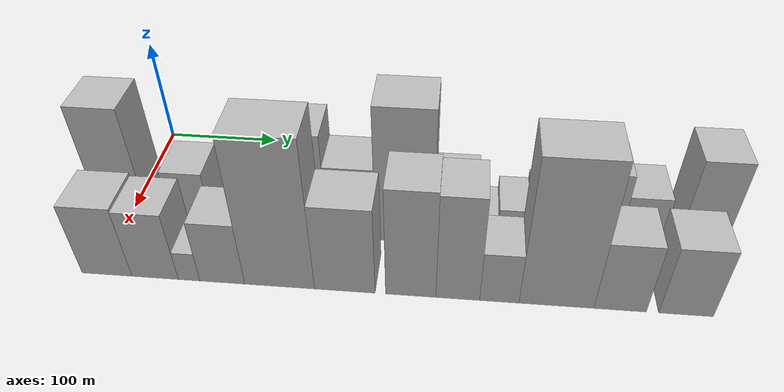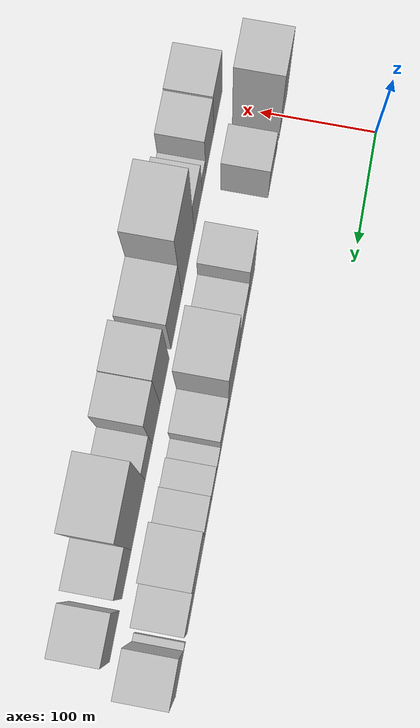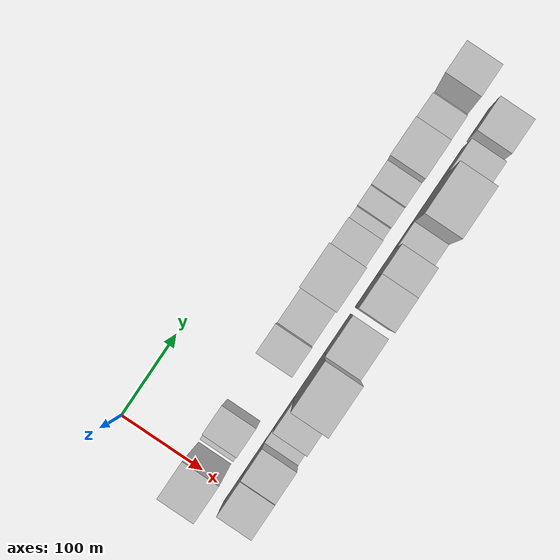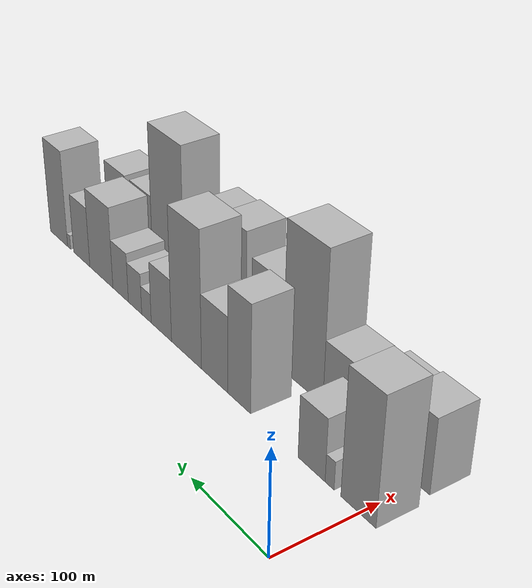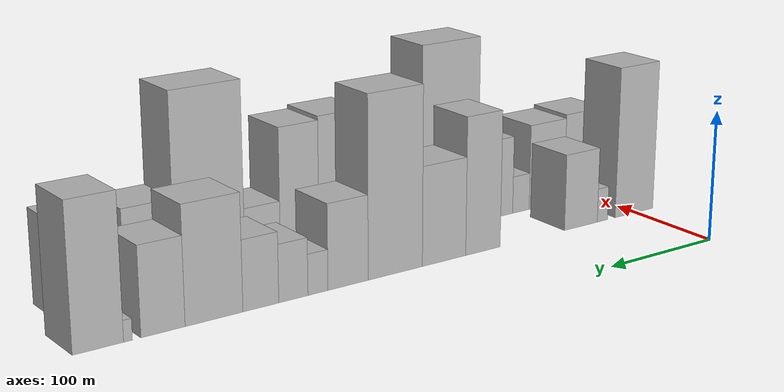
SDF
<sdf version="1.6">
 <world name="default">
  <model name="building_13">
   <static>1</static>
   <pose>100.0000 1.1690 0 0.000000 0.000000 0.000000</pose>
   <link name="link">
    <pose>0 0 60.00 0 0 0</pose>
    <collision name="collision"><geometry><box><size>40.0000 40.6133 120.0000</size></box></geometry></collision>
    <visual name="visual">
     <cast_shadows>0</cast_shadows>
     <geometry><box><size>40.0000 40.6133 120.0000</size></box></geometry>
     <material>
      <script>
       <uri>model://HANNAS_wall/materials/scripts</uri>
       <uri>model://HANNAS_wall/materials/textures</uri>
       <name>vrc/HANNAS_wall</name>
      </script>
     </material>
    </visual>
   </link>
  </model>
  <model name="building_14">
   <static>1</static>
   <pose>100.0000 34.9292 0 0.000000 0.000000 0.000000</pose>
   <link name="link">
    <pose>0 0 13.50 0 0 0</pose>
    <collision name="collision"><geometry><box><size>40.0000 10.9072 27.0000</size></box></geometry></collision>
    <visual name="visual">
     <cast_shadows>0</cast_shadows>
     <geometry><box><size>40.0000 10.9072 27.0000</size></box></geometry>
     <material>
      <script>
       <uri>model://HANNAS_wall/materials/scripts</uri>
       <uri>model://HANNAS_wall/materials/textures</uri>
       <name>vrc/HANNAS_wall</name>
      </script>
     </material>
    </visual>
   </link>
  </model>
  <model name="building_15">
   <static>1</static>
   <pose>100.0000 57.2827 0 0.000000 0.000000 0.000000</pose>
   <link name="link">
    <pose>0 0 30.00 0 0 0</pose>
    <collision name="collision"><geometry><box><size>40.0000 33.7997 60.0000</size></box></geometry></collision>
    <visual name="visual">
     <cast_shadows>0</cast_shadows>
     <geometry><box><size>40.0000 33.7997 60.0000</size></box></geometry>
     <material>
      <script>
       <uri>model://HANNAS_wall/materials/scripts</uri>
       <uri>model://HANNAS_wall/materials/textures</uri>
       <name>vrc/HANNAS_wall</name>
      </script>
     </material>
    </visual>
   </link>
  </model>
  <model name="building_16">
   <static>1</static>
   <pose>100.0000 153.9141 0 0.000000 0.000000 0.000000</pose>
   <link name="link">
    <pose>0 0 52.50 0 0 0</pose>
    <collision name="collision"><geometry><box><size>40.0000 32.4877 105.0000</size></box></geometry></collision>
    <visual name="visual">
     <cast_shadows>0</cast_shadows>
     <geometry><box><size>40.0000 32.4877 105.0000</size></box></geometry>
     <material>
      <script>
       <uri>model://HANNAS_wall/materials/scripts</uri>
       <uri>model://HANNAS_wall/materials/textures</uri>
       <name>vrc/HANNAS_wall</name>
      </script>
     </material>
    </visual>
   </link>
  </model>
  <model name="building_17">
   <static>1</static>
   <pose>100.0000 189.9564 0 0.000000 0.000000 0.000000</pose>
   <link name="link">
    <pose>0 0 37.50 0 0 0</pose>
    <collision name="collision"><geometry><box><size>40.0000 39.5969 75.0000</size></box></geometry></collision>
    <visual name="visual">
     <cast_shadows>0</cast_shadows>
     <geometry><box><size>40.0000 39.5969 75.0000</size></box></geometry>
     <material>
      <script>
       <uri>model://HANNAS_wall/materials/scripts</uri>
       <uri>model://HANNAS_wall/materials/textures</uri>
       <name>vrc/HANNAS_wall</name>
      </script>
     </material>
    </visual>
   </link>
  </model>
  <model name="building_18">
   <static>1</static>
   <pose>100.0000 233.4848 0 0.000000 0.000000 0.000000</pose>
   <link name="link">
    <pose>0 0 67.50 0 0 0</pose>
    <collision name="collision"><geometry><box><size>40.0000 47.4599 135.0000</size></box></geometry></collision>
    <visual name="visual">
     <cast_shadows>0</cast_shadows>
     <geometry><box><size>40.0000 47.4599 135.0000</size></box></geometry>
     <material>
      <script>
       <uri>model://HANNAS_wall/materials/scripts</uri>
       <uri>model://HANNAS_wall/materials/textures</uri>
       <name>vrc/HANNAS_wall</name>
      </script>
     </material>
    </visual>
   </link>
  </model>
  <model name="building_19">
   <static>1</static>
   <pose>100.0000 274.1606 0 0.000000 0.000000 0.000000</pose>
   <link name="link">
    <pose>0 0 31.50 0 0 0</pose>
    <collision name="collision"><geometry><box><size>40.0000 33.8915 63.0000</size></box></geometry></collision>
    <visual name="visual">
     <cast_shadows>0</cast_shadows>
     <geometry><box><size>40.0000 33.8915 63.0000</size></box></geometry>
     <material>
      <script>
       <uri>model://HANNAS_wall/materials/scripts</uri>
       <uri>model://HANNAS_wall/materials/textures</uri>
       <name>vrc/HANNAS_wall</name>
      </script>
     </material>
    </visual>
   </link>
  </model>
  <model name="building_20">
   <static>1</static>
   <pose>100.0000 299.3022 0 0.000000 0.000000 0.000000</pose>
   <link name="link">
    <pose>0 0 15.00 0 0 0</pose>
    <collision name="collision"><geometry><box><size>40.0000 16.3916 30.0000</size></box></geometry></collision>
    <visual name="visual">
     <cast_shadows>0</cast_shadows>
     <geometry><box><size>40.0000 16.3916 30.0000</size></box></geometry>
     <material>
      <script>
       <uri>model://HANNAS_wall/materials/scripts</uri>
       <uri>model://HANNAS_wall/materials/textures</uri>
       <name>vrc/HANNAS_wall</name>
      </script>
     </material>
    </visual>
   </link>
  </model>
  <model name="building_21">
   <static>1</static>
   <pose>100.0000 319.2387 0 0.000000 0.000000 0.000000</pose>
   <link name="link">
    <pose>0 0 21.00 0 0 0</pose>
    <collision name="collision"><geometry><box><size>40.0000 23.4814 42.0000</size></box></geometry></collision>
    <visual name="visual">
     <cast_shadows>0</cast_shadows>
     <geometry><box><size>40.0000 23.4814 42.0000</size></box></geometry>
     <material>
      <script>
       <uri>model://HANNAS_wall/materials/scripts</uri>
       <uri>model://HANNAS_wall/materials/textures</uri>
       <name>vrc/HANNAS_wall</name>
      </script>
     </material>
    </visual>
   </link>
  </model>
  <model name="building_22">
   <static>1</static>
   <pose>100.0000 345.0487 0 0.000000 0.000000 0.000000</pose>
   <link name="link">
    <pose>0 0 25.50 0 0 0</pose>
    <collision name="collision"><geometry><box><size>40.0000 28.1386 51.0000</size></box></geometry></collision>
    <visual name="visual">
     <cast_shadows>0</cast_shadows>
     <geometry><box><size>40.0000 28.1386 51.0000</size></box></geometry>
     <material>
      <script>
       <uri>model://HANNAS_wall/materials/scripts</uri>
       <uri>model://HANNAS_wall/materials/textures</uri>
       <name>vrc/HANNAS_wall</name>
      </script>
     </material>
    </visual>
   </link>
  </model>
  <model name="building_23">
   <static>1</static>
   <pose>100.0000 380.9719 0 0.000000 0.000000 0.000000</pose>
   <link name="link">
    <pose>0 0 42.00 0 0 0</pose>
    <collision name="collision"><geometry><box><size>40.0000 43.7077 84.0000</size></box></geometry></collision>
    <visual name="visual">
     <cast_shadows>0</cast_shadows>
     <geometry><box><size>40.0000 43.7077 84.0000</size></box></geometry>
     <material>
      <script>
       <uri>model://HANNAS_wall/materials/scripts</uri>
       <uri>model://HANNAS_wall/materials/textures</uri>
       <name>vrc/HANNAS_wall</name>
      </script>
     </material>
    </visual>
   </link>
  </model>
  <model name="building_24">
   <static>1</static>
   <pose>100.0000 418.9045 0 0.000000 0.000000 0.000000</pose>
   <link name="link">
    <pose>0 0 31.50 0 0 0</pose>
    <collision name="collision"><geometry><box><size>40.0000 32.1575 63.0000</size></box></geometry></collision>
    <visual name="visual">
     <cast_shadows>0</cast_shadows>
     <geometry><box><size>40.0000 32.1575 63.0000</size></box></geometry>
     <material>
      <script>
       <uri>model://HANNAS_wall/materials/scripts</uri>
       <uri>model://HANNAS_wall/materials/textures</uri>
       <name>vrc/HANNAS_wall</name>
      </script>
     </material>
    </visual>
   </link>
  </model>
  <model name="building_25">
   <static>1</static>
   <pose>100.0000 444.1116 0 0.000000 0.000000 0.000000</pose>
   <link name="link">
    <pose>0 0 7.50 0 0 0</pose>
    <collision name="collision"><geometry><box><size>40.0000 6.2568 15.0000</size></box></geometry></collision>
    <visual name="visual">
     <cast_shadows>0</cast_shadows>
     <geometry><box><size>40.0000 6.2568 15.0000</size></box></geometry>
     <material>
      <script>
       <uri>model://HANNAS_wall/materials/scripts</uri>
       <uri>model://HANNAS_wall/materials/textures</uri>
       <name>vrc/HANNAS_wall</name>
      </script>
     </material>
    </visual>
   </link>
  </model>
  <model name="building_26">
   <static>1</static>
   <pose>100.0000 465.0270 0 0.000000 0.000000 0.000000</pose>
   <link name="link">
    <pose>0 0 51.00 0 0 0</pose>
    <collision name="collision"><geometry><box><size>40.0000 35.5739 102.0000</size></box></geometry></collision>
    <visual name="visual">
     <cast_shadows>0</cast_shadows>
     <geometry><box><size>40.0000 35.5739 102.0000</size></box></geometry>
     <material>
      <script>
       <uri>model://HANNAS_wall/materials/scripts</uri>
       <uri>model://HANNAS_wall/materials/textures</uri>
       <name>vrc/HANNAS_wall</name>
      </script>
     </material>
    </visual>
   </link>
  </model>
  <model name="building_39">
   <static>1</static>
   <pose>155.0000 5.8665 0 0.000000 0.000000 0.000000</pose>
   <link name="link">
    <pose>0 0 36.00 0 0 0</pose>
    <collision name="collision"><geometry><box><size>40.0000 40.0348 72.0000</size></box></geometry></collision>
    <visual name="visual">
     <cast_shadows>0</cast_shadows>
     <geometry><box><size>40.0000 40.0348 72.0000</size></box></geometry>
     <material>
      <script>
       <uri>model://HANNAS_wall/materials/scripts</uri>
       <uri>model://HANNAS_wall/materials/textures</uri>
       <name>vrc/HANNAS_wall</name>
      </script>
     </material>
    </visual>
   </link>
  </model>
  <model name="building_40">
   <static>1</static>
   <pose>155.0000 44.3310 0 0.000000 0.000000 0.000000</pose>
   <link name="link">
    <pose>0 0 34.50 0 0 0</pose>
    <collision name="collision"><geometry><box><size>40.0000 36.8942 69.0000</size></box></geometry></collision>
    <visual name="visual">
     <cast_shadows>0</cast_shadows>
     <geometry><box><size>40.0000 36.8942 69.0000</size></box></geometry>
     <material>
      <script>
       <uri>model://HANNAS_wall/materials/scripts</uri>
       <uri>model://HANNAS_wall/materials/textures</uri>
       <name>vrc/HANNAS_wall</name>
      </script>
     </material>
    </visual>
   </link>
  </model>
  <model name="building_41">
   <static>1</static>
   <pose>155.0000 71.2959 0 0.000000 0.000000 0.000000</pose>
   <link name="link">
    <pose>0 0 15.00 0 0 0</pose>
    <collision name="collision"><geometry><box><size>40.0000 17.0355 30.0000</size></box></geometry></collision>
    <visual name="visual">
     <cast_shadows>0</cast_shadows>
     <geometry><box><size>40.0000 17.0355 30.0000</size></box></geometry>
     <material>
      <script>
       <uri>model://HANNAS_wall/materials/scripts</uri>
       <uri>model://HANNAS_wall/materials/textures</uri>
       <name>vrc/HANNAS_wall</name>
      </script>
     </material>
    </visual>
   </link>
  </model>
  <model name="building_42">
   <static>1</static>
   <pose>155.0000 97.4309 0 0.000000 0.000000 0.000000</pose>
   <link name="link">
    <pose>0 0 31.50 0 0 0</pose>
    <collision name="collision"><geometry><box><size>40.0000 35.2345 63.0000</size></box></geometry></collision>
    <visual name="visual">
     <cast_shadows>0</cast_shadows>
     <geometry><box><size>40.0000 35.2345 63.0000</size></box></geometry>
     <material>
      <script>
       <uri>model://HANNAS_wall/materials/scripts</uri>
       <uri>model://HANNAS_wall/materials/textures</uri>
       <name>vrc/HANNAS_wall</name>
      </script>
     </material>
    </visual>
   </link>
  </model>
  <model name="building_43">
   <static>1</static>
   <pose>155.0000 142.2463 0 0.000000 0.000000 0.000000</pose>
   <link name="link">
    <pose>0 0 73.50 0 0 0</pose>
    <collision name="collision"><geometry><box><size>40.0000 54.3964 147.0000</size></box></geometry></collision>
    <visual name="visual">
     <cast_shadows>0</cast_shadows>
     <geometry><box><size>40.0000 54.3964 147.0000</size></box></geometry>
     <material>
      <script>
       <uri>model://HANNAS_wall/materials/scripts</uri>
       <uri>model://HANNAS_wall/materials/textures</uri>
       <name>vrc/HANNAS_wall</name>
      </script>
     </material>
    </visual>
   </link>
  </model>
  <model name="building_44">
   <static>1</static>
   <pose>155.0000 192.6951 0 0.000000 0.000000 0.000000</pose>
   <link name="link">
    <pose>0 0 43.50 0 0 0</pose>
    <collision name="collision"><geometry><box><size>40.0000 46.5011 87.0000</size></box></geometry></collision>
    <visual name="visual">
     <cast_shadows>0</cast_shadows>
     <geometry><box><size>40.0000 46.5011 87.0000</size></box></geometry>
     <material>
      <script>
       <uri>model://HANNAS_wall/materials/scripts</uri>
       <uri>model://HANNAS_wall/materials/textures</uri>
       <name>vrc/HANNAS_wall</name>
      </script>
     </material>
    </visual>
   </link>
  </model>
  <model name="building_45">
   <static>1</static>
   <pose>155.0000 243.0065 0 0.000000 0.000000 0.000000</pose>
   <link name="link">
    <pose>0 0 54.00 0 0 0</pose>
    <collision name="collision"><geometry><box><size>40.0000 38.1218 108.0000</size></box></geometry></collision>
    <visual name="visual">
     <cast_shadows>0</cast_shadows>
     <geometry><box><size>40.0000 38.1218 108.0000</size></box></geometry>
     <material>
      <script>
       <uri>model://HANNAS_wall/materials/scripts</uri>
       <uri>model://HANNAS_wall/materials/textures</uri>
       <name>vrc/HANNAS_wall</name>
      </script>
     </material>
    </visual>
   </link>
  </model>
  <model name="building_46">
   <static>1</static>
   <pose>155.0000 278.5282 0 0.000000 0.000000 0.000000</pose>
   <link name="link">
    <pose>0 0 52.50 0 0 0</pose>
    <collision name="collision"><geometry><box><size>40.0000 32.9216 105.0000</size></box></geometry></collision>
    <visual name="visual">
     <cast_shadows>0</cast_shadows>
     <geometry><box><size>40.0000 32.9216 105.0000</size></box></geometry>
     <material>
      <script>
       <uri>model://HANNAS_wall/materials/scripts</uri>
       <uri>model://HANNAS_wall/materials/textures</uri>
       <name>vrc/HANNAS_wall</name>
      </script>
     </material>
    </visual>
   </link>
  </model>
  <model name="building_47">
   <static>1</static>
   <pose>155.0000 309.6712 0 0.000000 0.000000 0.000000</pose>
   <link name="link">
    <pose>0 0 25.50 0 0 0</pose>
    <collision name="collision"><geometry><box><size>40.0000 29.3645 51.0000</size></box></geometry></collision>
    <visual name="visual">
     <cast_shadows>0</cast_shadows>
     <geometry><box><size>40.0000 29.3645 51.0000</size></box></geometry>
     <material>
      <script>
       <uri>model://HANNAS_wall/materials/scripts</uri>
       <uri>model://HANNAS_wall/materials/textures</uri>
       <name>vrc/HANNAS_wall</name>
      </script>
     </material>
    </visual>
   </link>
  </model>
  <model name="building_48">
   <static>1</static>
   <pose>155.0000 352.1238 0 0.000000 0.000000 0.000000</pose>
   <link name="link">
    <pose>0 0 72.00 0 0 0</pose>
    <collision name="collision"><geometry><box><size>40.0000 55.5409 144.0000</size></box></geometry></collision>
    <visual name="visual">
     <cast_shadows>0</cast_shadows>
     <geometry><box><size>40.0000 55.5409 144.0000</size></box></geometry>
     <material>
      <script>
       <uri>model://HANNAS_wall/materials/scripts</uri>
       <uri>model://HANNAS_wall/materials/textures</uri>
       <name>vrc/HANNAS_wall</name>
      </script>
     </material>
    </visual>
   </link>
  </model>
  <model name="building_49">
   <static>1</static>
   <pose>155.0000 399.0699 0 0.000000 0.000000 0.000000</pose>
   <link name="link">
    <pose>0 0 34.50 0 0 0</pose>
    <collision name="collision"><geometry><box><size>40.0000 38.3513 69.0000</size></box></geometry></collision>
    <visual name="visual">
     <cast_shadows>0</cast_shadows>
     <geometry><box><size>40.0000 38.3513 69.0000</size></box></geometry>
     <material>
      <script>
       <uri>model://HANNAS_wall/materials/scripts</uri>
       <uri>model://HANNAS_wall/materials/textures</uri>
       <name>vrc/HANNAS_wall</name>
      </script>
     </material>
    </visual>
   </link>
  </model>
  <model name="building_50">
   <static>1</static>
   <pose>155.0000 446.9899 0 0.000000 0.000000 0.000000</pose>
   <link name="link">
    <pose>0 0 34.50 0 0 0</pose>
    <collision name="collision"><geometry><box><size>40.0000 39.4888 69.0000</size></box></geometry></collision>
    <visual name="visual">
     <cast_shadows>0</cast_shadows>
     <geometry><box><size>40.0000 39.4888 69.0000</size></box></geometry>
     <material>
      <script>
       <uri>model://HANNAS_wall/materials/scripts</uri>
       <uri>model://HANNAS_wall/materials/textures</uri>
       <name>vrc/HANNAS_wall</name>
      </script>
     </material>
    </visual>
   </link>
  </model>
 </world>
</sdf>
